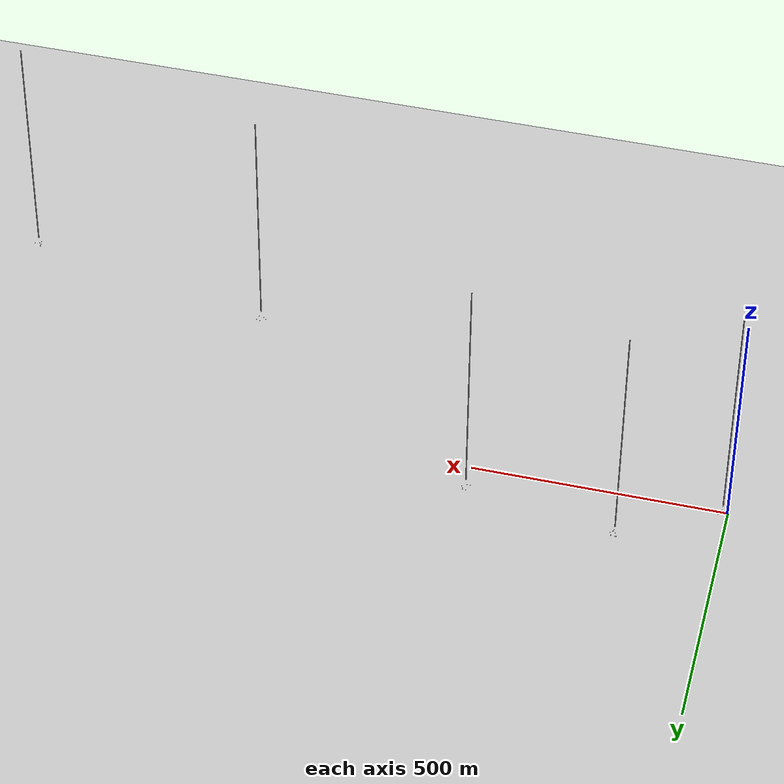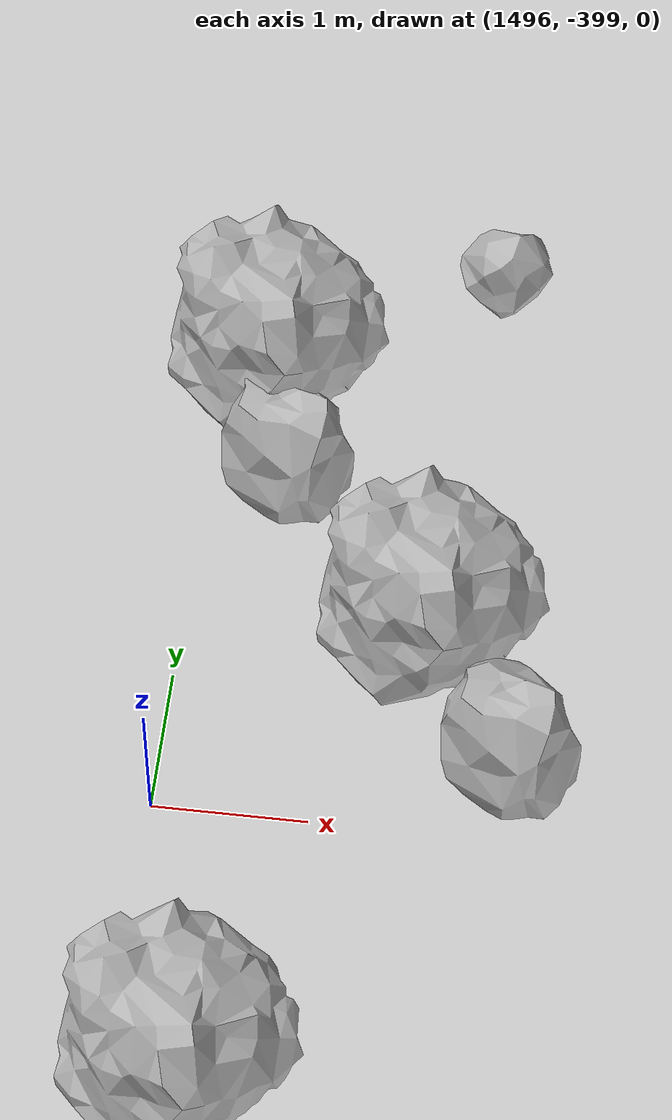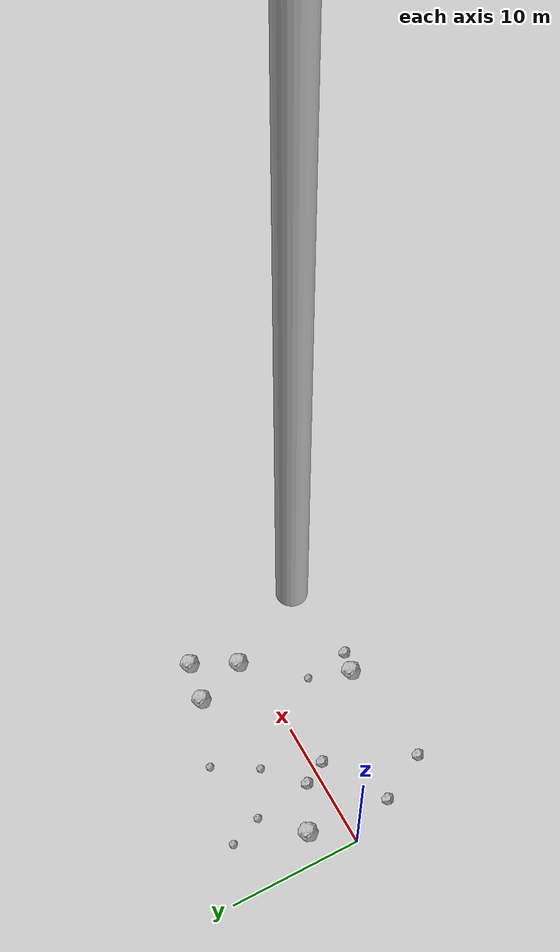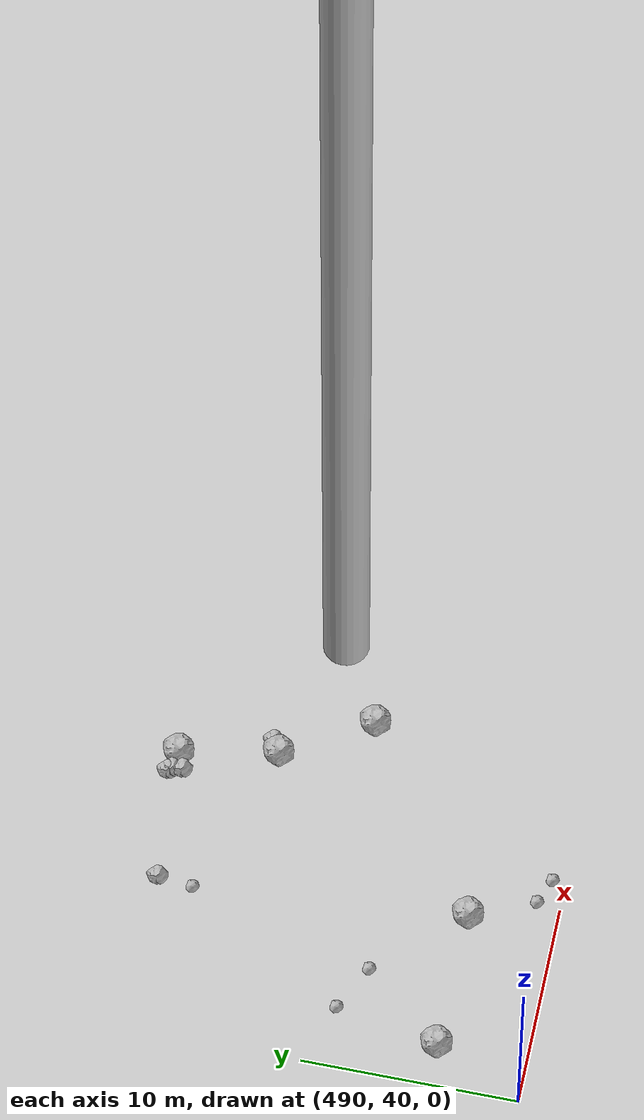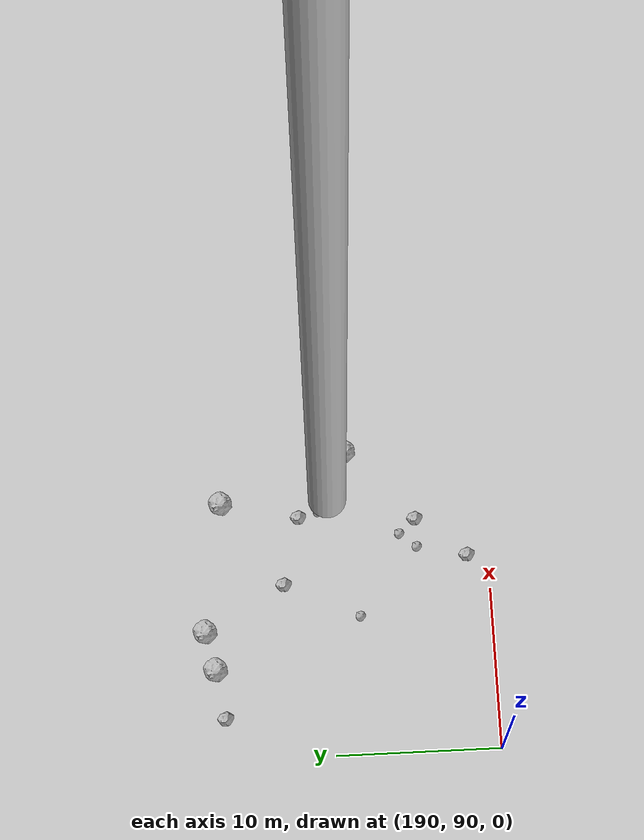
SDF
<?xml version="1.0" ?>
<sdf version="1.6">
  <world name="default">

    <include>
      <uri>model://custom_ground</uri>
    </include>

    <include>
      <uri>model://sun</uri>
    </include>

    <spherical_coordinates>
      <surface_model>EARTH_WGS84</surface_model>
      <latitude_deg>38.161479</latitude_deg>
      <longitude_deg>-122.454630</longitude_deg>
      <elevation>488.0</elevation>
      <heading_deg>90</heading_deg>
    </spherical_coordinates>

    <model name="rock1_0_0">
      <include>
        <uri>model://rock1</uri>
        <pose>15.244290546615407 4.822406086446286 0.5 0 0 0</pose>
      </include>
    </model>
    <model name="rock1_0_1">
      <include>
        <uri>model://rock1</uri>
        <pose>12.035244439758854 -6.2600742702245915 0.5 0 0 0</pose>
      </include>
    </model>
    <model name="rock1_0_2">
      <include>
        <uri>model://rock1</uri>
        <pose>16.691487756519063 0.9460575879442992 0.5 0 0 0</pose>
      </include>
    </model>
    <model name="rock1_0_3">
      <include>
        <uri>model://rock1</uri>
        <pose>18.358542937063294 4.2605393512361935 0.5 0 0 0</pose>
      </include>
    </model>
    <model name="rock1_0_4">
      <include>
        <uri>model://rock1</uri>
        <pose>2.1974454100859098 2.8523207093847542 0.5 0 0 0</pose>
      </include>
    </model>
    <model name="rock2_0_0">
      <include>
        <uri>model://rock2</uri>
        <pose>13.670832632984883 -6.643057937044066 0.3 0 0 0</pose>
      </include>
    </model>
    <model name="rock2_0_1">
      <include>
        <uri>model://rock2</uri>
        <pose>1.7287663841070589 -3.473777705620331 0.3 0 0 0</pose>
      </include>
    </model>
    <model name="rock2_0_2">
      <include>
        <uri>model://rock2</uri>
        <pose>3.674573792295719 -7.196134272503749 0.3 0 0 0</pose>
      </include>
    </model>
    <model name="rock2_0_3">
      <include>
        <uri>model://rock2</uri>
        <pose>5.55226131447788 1.0646336477505791 0.3 0 0 0</pose>
      </include>
    </model>
    <model name="rock2_0_4">
      <include>
        <uri>model://rock2</uri>
        <pose>6.537814862808973 -0.7231380404777035 0.3 0 0 0</pose>
      </include>
    </model>
    <model name="rock3_0_0">
      <include>
        <uri>model://rock3</uri>
        <pose>8.19085474780805 3.4655523800454446 0.2 0 0 0</pose>
      </include>
    </model>
    <model name="rock3_0_1">
      <include>
        <uri>model://rock3</uri>
        <pose>13.073985706162585 -3.1943529494521794 0.2 0 0 0</pose>
      </include>
    </model>
    <model name="rock3_0_2">
      <include>
        <uri>model://rock3</uri>
        <pose>3.9426439579833894 7.900454741282893 0.2 0 0 0</pose>
      </include>
    </model>
    <model name="rock3_0_3">
      <include>
        <uri>model://rock3</uri>
        <pose>10.067524633924393 6.671100024352331 0.2 0 0 0</pose>
      </include>
    </model>
    <model name="rock3_0_4">
      <include>
        <uri>model://rock3</uri>
        <pose>4.864147667429977 5.447178804266775 0.2 0 0 0</pose>
      </include>
    </model>
    <model name="rock1_1_0">
      <include>
        <uri>model://rock1</uri>
        <pose>206.16685594130763 106.5589116756159 0.5 0 0 0</pose>
      </include>
    </model>
    <model name="rock1_1_1">
      <include>
        <uri>model://rock1</uri>
        <pose>197.99779423030378 107.71518007649941 0.5 0 0 0</pose>
      </include>
    </model>
    <model name="rock1_1_2">
      <include>
        <uri>model://rock1</uri>
        <pose>208.1265694196005 100.02239387057233 0.5 0 0 0</pose>
      </include>
    </model>
    <model name="rock1_1_3">
      <include>
        <uri>model://rock1</uri>
        <pose>195.5947061983144 107.13842312557816 0.5 0 0 0</pose>
      </include>
    </model>
    <model name="rock1_1_4">
      <include>
        <uri>model://rock1</uri>
        <pose>209.26004272261517 98.70852373491248 0.5 0 0 0</pose>
      </include>
    </model>
    <model name="rock2_1_0">
      <include>
        <uri>model://rock2</uri>
        <pose>200.78082944703698 102.79102198626354 0.3 0 0 0</pose>
      </include>
    </model>
    <model name="rock2_1_1">
      <include>
        <uri>model://rock2</uri>
        <pose>202.2054093036636 91.36934318326024 0.3 0 0 0</pose>
      </include>
    </model>
    <model name="rock2_1_2">
      <include>
        <uri>model://rock2</uri>
        <pose>205.07422792480932 101.72150259940894 0.3 0 0 0</pose>
      </include>
    </model>
    <model name="rock2_1_3">
      <include>
        <uri>model://rock2</uri>
        <pose>204.68459936981841 94.47129793713712 0.3 0 0 0</pose>
      </include>
    </model>
    <model name="rock2_1_4">
      <include>
        <uri>model://rock2</uri>
        <pose>192.5528370424988 106.61497067236522 0.3 0 0 0</pose>
      </include>
    </model>
    <model name="rock3_1_0">
      <include>
        <uri>model://rock3</uri>
        <pose>198.56221298852313 98.11462180574749 0.2 0 0 0</pose>
      </include>
    </model>
    <model name="rock3_1_1">
      <include>
        <uri>model://rock3</uri>
        <pose>195.70348068778839 107.56197351209642 0.2 0 0 0</pose>
      </include>
    </model>
    <model name="rock3_1_2">
      <include>
        <uri>model://rock3</uri>
        <pose>203.73794645771522 95.45714830953004 0.2 0 0 0</pose>
      </include>
    </model>
    <model name="rock3_1_3">
      <include>
        <uri>model://rock3</uri>
        <pose>202.8566158234364 94.41124570846618 0.2 0 0 0</pose>
      </include>
    </model>
    <model name="rock3_1_4">
      <include>
        <uri>model://rock3</uri>
        <pose>205.38964316239958 100.46234163621901 0.2 0 0 0</pose>
      </include>
    </model>
    <model name="rock1_2_0">
      <include>
        <uri>model://rock1</uri>
        <pose>504.5582738939216 58.88964590465936 0.5 0 0 0</pose>
      </include>
    </model>
    <model name="rock1_2_1">
      <include>
        <uri>model://rock1</uri>
        <pose>498.8420254458227 44.087237630526246 0.5 0 0 0</pose>
      </include>
    </model>
    <model name="rock1_2_2">
      <include>
        <uri>model://rock1</uri>
        <pose>505.43357378250187 54.34101073797552 0.5 0 0 0</pose>
      </include>
    </model>
    <model name="rock1_2_3">
      <include>
        <uri>model://rock1</uri>
        <pose>507.93536851896624 50.285822220038995 0.5 0 0 0</pose>
      </include>
    </model>
    <model name="rock1_2_4">
      <include>
        <uri>model://rock1</uri>
        <pose>492.064514586297 44.18899810423057 0.5 0 0 0</pose>
      </include>
    </model>
    <model name="rock2_2_0">
      <include>
        <uri>model://rock2</uri>
        <pose>503.6626633644904 58.54682028927927 0.3 0 0 0</pose>
      </include>
    </model>
    <model name="rock2_2_1">
      <include>
        <uri>model://rock2</uri>
        <pose>497.90865937604383 58.40858057731941 0.3 0 0 0</pose>
      </include>
    </model>
    <model name="rock2_2_2">
      <include>
        <uri>model://rock2</uri>
        <pose>503.6009823926487 59.0203655781057 0.3 0 0 0</pose>
      </include>
    </model>
    <model name="rock2_2_3">
      <include>
        <uri>model://rock2</uri>
        <pose>506.030219420699 54.71230355806287 0.3 0 0 0</pose>
      </include>
    </model>
    <model name="rock2_2_4">
      <include>
        <uri>model://rock2</uri>
        <pose>503.4561379495732 59.18875639033842 0.3 0 0 0</pose>
      </include>
    </model>
    <model name="rock3_2_0">
      <include>
        <uri>model://rock3</uri>
        <pose>500.12649095172384 41.12161625433097 0.2 0 0 0</pose>
      </include>
    </model>
    <model name="rock3_2_1">
      <include>
        <uri>model://rock3</uri>
        <pose>501.3875217463527 40.63959275507665 0.2 0 0 0</pose>
      </include>
    </model>
    <model name="rock3_2_2">
      <include>
        <uri>model://rock3</uri>
        <pose>497.6994513083181 56.71578230795934 0.2 0 0 0</pose>
      </include>
    </model>
    <model name="rock3_2_3">
      <include>
        <uri>model://rock3</uri>
        <pose>492.9614537226975 48.98217513479085 0.2 0 0 0</pose>
      </include>
    </model>
    <model name="rock3_2_4">
      <include>
        <uri>model://rock3</uri>
        <pose>495.1735599143988 47.93069943406871 0.2 0 0 0</pose>
      </include>
    </model>
    <model name="rock1_3_0">
      <include>
        <uri>model://rock1</uri>
        <pose>1001.330471010323 -293.18961612298955 0.5 0 0 0</pose>
      </include>
    </model>
    <model name="rock1_3_1">
      <include>
        <uri>model://rock1</uri>
        <pose>999.5988561906736 -309.1772211061204 0.5 0 0 0</pose>
      </include>
    </model>
    <model name="rock1_3_2">
      <include>
        <uri>model://rock1</uri>
        <pose>997.0571321176373 -291.04079930357994 0.5 0 0 0</pose>
      </include>
    </model>
    <model name="rock1_3_3">
      <include>
        <uri>model://rock1</uri>
        <pose>1008.6140314024608 -295.1035543586084 0.5 0 0 0</pose>
      </include>
    </model>
    <model name="rock1_3_4">
      <include>
        <uri>model://rock1</uri>
        <pose>1005.6610864022232 -304.58826860148866 0.5 0 0 0</pose>
      </include>
    </model>
    <model name="rock2_3_0">
      <include>
        <uri>model://rock2</uri>
        <pose>1002.0975843716018 -309.1254496154073 0.3 0 0 0</pose>
      </include>
    </model>
    <model name="rock2_3_1">
      <include>
        <uri>model://rock2</uri>
        <pose>1003.1048015020893 -304.72981640120196 0.3 0 0 0</pose>
      </include>
    </model>
    <model name="rock2_3_2">
      <include>
        <uri>model://rock2</uri>
        <pose>998.7680675678214 -291.1767098635941 0.3 0 0 0</pose>
      </include>
    </model>
    <model name="rock2_3_3">
      <include>
        <uri>model://rock2</uri>
        <pose>995.5170844647481 -303.82573036529834 0.3 0 0 0</pose>
      </include>
    </model>
    <model name="rock2_3_4">
      <include>
        <uri>model://rock2</uri>
        <pose>990.4904702208228 -298.66552085642024 0.3 0 0 0</pose>
      </include>
    </model>
    <model name="rock3_3_0">
      <include>
        <uri>model://rock3</uri>
        <pose>996.4196824983588 -291.27110205709334 0.2 0 0 0</pose>
      </include>
    </model>
    <model name="rock3_3_1">
      <include>
        <uri>model://rock3</uri>
        <pose>998.1183705849867 -292.7546984140102 0.2 0 0 0</pose>
      </include>
    </model>
    <model name="rock3_3_2">
      <include>
        <uri>model://rock3</uri>
        <pose>1008.8202919638555 -297.61551713681814 0.2 0 0 0</pose>
      </include>
    </model>
    <model name="rock3_3_3">
      <include>
        <uri>model://rock3</uri>
        <pose>1006.41479736934 -305.73956212705053 0.2 0 0 0</pose>
      </include>
    </model>
    <model name="rock3_3_4">
      <include>
        <uri>model://rock3</uri>
        <pose>1007.2214289399957 -299.6273571618502 0.2 0 0 0</pose>
      </include>
    </model>
    <model name="rock1_4_0">
      <include>
        <uri>model://rock1</uri>
        <pose>1497.6372077611816 -397.5054139833688 0.5 0 0 0</pose>
      </include>
    </model>
    <model name="rock1_4_1">
      <include>
        <uri>model://rock1</uri>
        <pose>1496.3764838653933 -395.4496975093847 0.5 0 0 0</pose>
      </include>
    </model>
    <model name="rock1_4_2">
      <include>
        <uri>model://rock1</uri>
        <pose>1496.4744642094838 -400.8723617498309 0.5 0 0 0</pose>
      </include>
    </model>
    <model name="rock1_4_3">
      <include>
        <uri>model://rock1</uri>
        <pose>1498.8604195851797 -409.16493707792364 0.5 0 0 0</pose>
      </include>
    </model>
    <model name="rock1_4_4">
      <include>
        <uri>model://rock1</uri>
        <pose>1509.6126214116166 -401.77042503245156 0.5 0 0 0</pose>
      </include>
    </model>
    <model name="rock2_4_0">
      <include>
        <uri>model://rock2</uri>
        <pose>1496.7696532469884 -406.227960320139 0.3 0 0 0</pose>
      </include>
    </model>
    <model name="rock2_4_1">
      <include>
        <uri>model://rock2</uri>
        <pose>1504.2896023882072 -396.93824835033774 0.3 0 0 0</pose>
      </include>
    </model>
    <model name="rock2_4_2">
      <include>
        <uri>model://rock2</uri>
        <pose>1498.2228499315852 -398.400934424758 0.3 0 0 0</pose>
      </include>
    </model>
    <model name="rock2_4_3">
      <include>
        <uri>model://rock2</uri>
        <pose>1500.8410935783597 -404.61911038663845 0.3 0 0 0</pose>
      </include>
    </model>
    <model name="rock2_4_4">
      <include>
        <uri>model://rock2</uri>
        <pose>1496.5368916217271 -396.26767085924763 0.3 0 0 0</pose>
      </include>
    </model>
    <model name="rock3_4_0">
      <include>
        <uri>model://rock3</uri>
        <pose>1507.9605559613155 -405.3135977456968 0.2 0 0 0</pose>
      </include>
    </model>
    <model name="rock3_4_1">
      <include>
        <uri>model://rock3</uri>
        <pose>1504.9073539012188 -392.1948154918211 0.2 0 0 0</pose>
      </include>
    </model>
    <model name="rock3_4_2">
      <include>
        <uri>model://rock3</uri>
        <pose>1497.2701172835132 -401.6934700516559 0.2 0 0 0</pose>
      </include>
    </model>
    <model name="rock3_4_3">
      <include>
        <uri>model://rock3</uri>
        <pose>1497.8242589383633 -394.539984772787 0.2 0 0 0</pose>
      </include>
    </model>
    <model name="rock3_4_4">
      <include>
        <uri>model://rock3</uri>
        <pose>1506.5886592120287 -399.4498948625265 0.2 0 0 0</pose>
      </include>
    </model>

    <model name="cylinder_1">
      <static>true</static>
      <link name="link">
        <visual name="visual">
          <geometry>
            <cylinder>
              <radius>1</radius>
              <length>500</length>
            </cylinder>
          </geometry>
        </visual>
      </link>
      <pose>10 0 270 0 0 0</pose>
    </model>

    <model name="cylinder_2">
      <static>true</static>
      <link name="link">
        <visual name="visual">
          <geometry>
            <cylinder>
              <radius>1</radius>
              <length>500</length>
            </cylinder>
          </geometry>
        </visual>
      </link>
      <pose>200 100 270 0 0 0</pose>
    </model>

    <model name="cylinder_3">
      <static>true</static>
      <link name="link">
        <visual name="visual">
          <geometry>
            <cylinder>
              <radius>1</radius>
              <length>500</length>
            </cylinder>
          </geometry>
        </visual>
      </link>
      <pose>500 50 270 0 0 0</pose>
    </model>

    <model name="cylinder_4">
      <static>true</static>
      <link name="link">
        <visual name="visual">
          <geometry>
            <cylinder>
              <radius>1</radius>
              <length>500</length>
            </cylinder>
          </geometry>
        </visual>
      </link>
      <pose>1000 -300 270 0 0 0</pose>
    </model>

    <model name="cylinder_5">
      <static>true</static>
      <link name="link">
        <visual name="visual">
          <geometry>
            <cylinder>
              <radius>1</radius>
              <length>500</length>
            </cylinder>
          </geometry>
        </visual>
      </link>
      <pose>1500 -400 270 0 0 0</pose>
    </model>

  </world>
</sdf>

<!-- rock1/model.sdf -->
<sdf version="1.6">
  <model name="rock1">
    <static>true</static> <!-- Set to true if the model should not move -->
    <pose>0 0 0 0 0 0</pose>

    <!--z offset is 0.5 for full scale-->

    <link name="link">
      <collision name="rock1_collision">
        <geometry>
          <mesh>
            <uri>model://meshes/rock1.dae</uri>
          </mesh>
        </geometry>
      </collision>
      <visual name="rock1_visual">
        <geometry>
          <mesh>
            <uri>model://meshes/rock1.dae</uri>
          </mesh>
        </geometry>
        <material>
          <script>
            <uri>model://materials/scripts/sand_pebbles.material</uri>
            <name>custom_ground/Image</name>
          </script>
        </material>
      </visual>
    </link>
  </model>
</sdf>

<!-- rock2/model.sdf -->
<sdf version="1.6">
  <model name="rock2">
    <static>true</static> <!-- Set to true if the model should not move -->
    <pose>0 0 0 0 0 0</pose>

    <!--z offset is 0.3 for full scale-->

    <link name="link">
      <collision name="rock2_collision">
        <geometry>
          <mesh>
            <uri>model://meshes/rock2.dae</uri>
          </mesh>
        </geometry>
      </collision>
      <visual name="rock2_visual">
        <geometry>
          <mesh>
            <uri>model://meshes/rock2.dae</uri>
          </mesh>
        </geometry>
        <material>
          <script>
            <uri>model://materials/scripts/sand_pebbles.material</uri>
            <name>custom_ground/Image</name>
          </script>
        </material>
      </visual>
    </link>
  </model>
</sdf>

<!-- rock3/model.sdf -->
<sdf version="1.6">
  <model name="rock3">
    <static>true</static> <!-- Set to true if the model should not move -->
    <pose>0 0 0 0 0 0</pose>

    <!--z offset is 0.2 for full scale-->

    <link name="link">
      <collision name="rock3_collision">
        <geometry>
          <mesh>
            <uri>model://meshes/rock3.dae</uri>
          </mesh>
        </geometry>
      </collision>
      <visual name="rock3_visual">
        <geometry>
          <mesh>
            <uri>model://meshes/rock3.dae</uri>
          </mesh>
        </geometry>
        <material>
          <script>
            <uri>model://materials/scripts/sand_pebbles.material</uri>
            <name>custom_ground/Image</name>
          </script>
        </material>
      </visual>
    </link>
  </model>
</sdf>

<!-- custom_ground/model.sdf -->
<sdf version="1.6">
  <model name="custom_ground">
    <static>true</static> <!-- Ground is static and immovable -->
    <link name="ground_link">
      <pose>240 0 0 0 0 0</pose> <!-- Position and orientation relative to the world -->
      <!-- Visual Representation -->
      <visual name="ground_visual">
        <geometry>
          <plane>
            <normal>0 0 1</normal> <!-- Upward facing plane -->
            <size>500 500</size> <!-- Size of the plane -->
          </plane>
        </geometry>
        <material>
          <script>
            <uri>model://materials/scripts/sand_pebbles.material</uri>
            <name>custom_ground/Image</name>
          </script>
        </material>
      </visual>

      <!-- Collision Representation -->
      <collision name="ground_collision">
        <geometry>
          <plane>
            <normal>0 0 1</normal>
            <size>100 100</size>
          </plane>
        </geometry>
      </collision>

    </link>
  </model>
</sdf>
